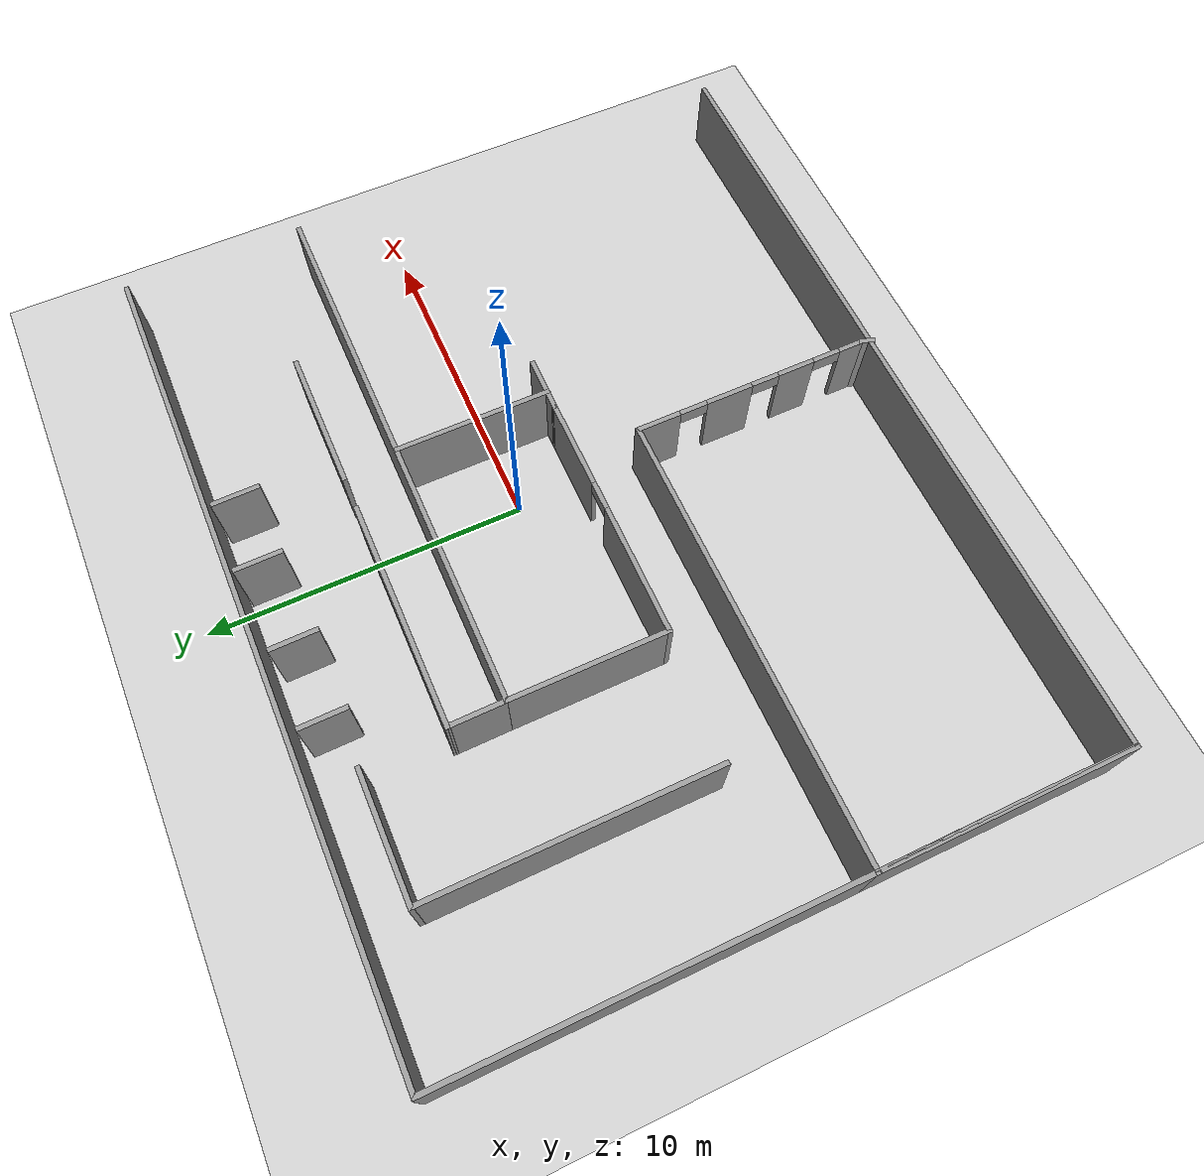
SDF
<sdf version="1.6">
 <world name="default">
  <model name="ground_plane">
   <static>1</static>
   <link name="link">
    <collision name="collision">
     <geometry><plane><normal>0 0 1</normal><size>100 100</size></plane></geometry>
     <surface><friction><ode><mu>100</mu><mu2>50</mu2></ode></friction></surface>
    </collision>
    <visual name="visual">
     <cast_shadows>0</cast_shadows>
     <geometry><plane><normal>0 0 1</normal><size>100 100</size></plane></geometry>
     <material>
      <script><uri>file://media/materials/scripts/gazebo.material</uri><name>Gazebo/Grey</name></script>
     </material>
    </visual>
   </link>
  </model>
  <model name="factory_wall">
   <link name="Wall_13">
    <pose>-0.762375 -0.322535 0 0 -0 3.14159</pose>
    <visual name="Wall_13_Visual_0">
     <pose>-2.55074 0 1.25 0 -0 0</pose>
     <geometry><box><size>2.89852 0.15 2.5</size></box></geometry>
     <material>
      <script><uri>file://media/materials/scripts/gazebo.material</uri><name>Gazebo/Grey</name></script>
      <ambient>1 1 1 1</ambient>
      <shader type="pixel"/>
     </material>
     <meta><layer>0</layer></meta>
    </visual>
    <visual name="Wall_13_Visual_1">
     <pose>1.89926 0 1.25 0 -0 0</pose>
     <geometry><box><size>4.20148 0.15 2.5</size></box></geometry>
     <material>
      <script><uri>file://media/materials/scripts/gazebo.material</uri><name>Gazebo/Grey</name></script>
      <ambient>1 1 1 1</ambient>
      <shader type="pixel"/>
     </material>
     <meta><layer>0</layer></meta>
    </visual>
    <visual name="Wall_13_Visual_2">
     <pose>-0.651482 0 2.25 0 -0 0</pose>
     <geometry><box><size>0.9 0.15 0.5</size></box></geometry>
     <material>
      <script><uri>file://media/materials/scripts/gazebo.material</uri><name>Gazebo/Grey</name></script>
      <ambient>1 1 1 1</ambient>
      <shader type="pixel"/>
     </material>
     <meta><layer>0</layer></meta>
    </visual>
    <collision name="Wall_13_Collision_0">
     <pose>-2.55074 0 1.25 0 -0 0</pose>
     <geometry><box><size>2.89852 0.15 2.5</size></box></geometry>
     <surface>
      <friction>
       <ode><mu>1</mu><mu2>1</mu2><fdir1>0 0 0</fdir1><slip1>0</slip1><slip2>0</slip2></ode>
       <torsional>
        <coefficient>1</coefficient>
        <patch_radius>0</patch_radius>
        <surface_radius>0</surface_radius>
        <use_patch_radius>1</use_patch_radius>
        <ode><slip>0</slip></ode>
       </torsional>
      </friction>
      <bounce><restitution_coefficient>0</restitution_coefficient><threshold>1e+06</threshold></bounce>
      <contact>
       <collide_without_contact>0</collide_without_contact>
       <collide_without_contact_bitmask>1</collide_without_contact_bitmask>
       <collide_bitmask>1</collide_bitmask>
       <ode>
        <soft_cfm>0</soft_cfm>
        <soft_erp>0.2</soft_erp>
        <kp>1e+13</kp>
        <kd>1</kd>
        <max_vel>0.01</max_vel>
        <min_depth>0</min_depth>
       </ode>
       <bullet>
        <split_impulse>1</split_impulse>
        <split_impulse_penetration_threshold>-0.01</split_impulse_penetration_threshold>
        <soft_cfm>0</soft_cfm>
        <soft_erp>0.2</soft_erp>
        <kp>1e+13</kp>
        <kd>1</kd>
       </bullet>
      </contact>
     </surface>
    </collision>
    <collision name="Wall_13_Collision_1">
     <pose>1.89926 0 1.25 0 -0 0</pose>
     <geometry><box><size>4.20148 0.15 2.5</size></box></geometry>
     <surface>
      <friction>
       <ode><mu>1</mu><mu2>1</mu2><fdir1>0 0 0</fdir1><slip1>0</slip1><slip2>0</slip2></ode>
       <torsional>
        <coefficient>1</coefficient>
        <patch_radius>0</patch_radius>
        <surface_radius>0</surface_radius>
        <use_patch_radius>1</use_patch_radius>
        <ode><slip>0</slip></ode>
       </torsional>
      </friction>
      <bounce><restitution_coefficient>0</restitution_coefficient><threshold>1e+06</threshold></bounce>
      <contact>
       <collide_without_contact>0</collide_without_contact>
       <collide_without_contact_bitmask>1</collide_without_contact_bitmask>
       <collide_bitmask>1</collide_bitmask>
       <ode>
        <soft_cfm>0</soft_cfm>
        <soft_erp>0.2</soft_erp>
        <kp>1e+13</kp>
        <kd>1</kd>
        <max_vel>0.01</max_vel>
        <min_depth>0</min_depth>
       </ode>
       <bullet>
        <split_impulse>1</split_impulse>
        <split_impulse_penetration_threshold>-0.01</split_impulse_penetration_threshold>
        <soft_cfm>0</soft_cfm>
        <soft_erp>0.2</soft_erp>
        <kp>1e+13</kp>
        <kd>1</kd>
       </bullet>
      </contact>
     </surface>
    </collision>
    <collision name="Wall_13_Collision_2">
     <pose>-0.651482 0 2.25 0 -0 0</pose>
     <geometry><box><size>0.9 0.15 0.5</size></box></geometry>
     <surface>
      <friction>
       <ode><mu>1</mu><mu2>1</mu2><fdir1>0 0 0</fdir1><slip1>0</slip1><slip2>0</slip2></ode>
       <torsional>
        <coefficient>1</coefficient>
        <patch_radius>0</patch_radius>
        <surface_radius>0</surface_radius>
        <use_patch_radius>1</use_patch_radius>
        <ode><slip>0</slip></ode>
       </torsional>
      </friction>
      <bounce><restitution_coefficient>0</restitution_coefficient><threshold>1e+06</threshold></bounce>
      <contact>
       <collide_without_contact>0</collide_without_contact>
       <collide_without_contact_bitmask>1</collide_without_contact_bitmask>
       <collide_bitmask>1</collide_bitmask>
       <ode>
        <soft_cfm>0</soft_cfm>
        <soft_erp>0.2</soft_erp>
        <kp>1e+13</kp>
        <kd>1</kd>
        <max_vel>0.01</max_vel>
        <min_depth>0</min_depth>
       </ode>
       <bullet>
        <split_impulse>1</split_impulse>
        <split_impulse_penetration_threshold>-0.01</split_impulse_penetration_threshold>
        <soft_cfm>0</soft_cfm>
        <soft_erp>0.2</soft_erp>
        <kp>1e+13</kp>
        <kd>1</kd>
       </bullet>
      </contact>
     </surface>
    </collision>
   </link>
   <link name="Wall_15">
    <pose>-4.68738 2.10247 0 0 -0 1.5708</pose>
    <visual name="Wall_15_Visual">
     <pose>0 0 1.25 0 -0 0</pose>
     <geometry><box><size>5 0.15 2.5</size></box></geometry>
     <material>
      <script><uri>file://media/materials/scripts/gazebo.material</uri><name>Gazebo/Grey</name></script>
      <ambient>1 1 1 1</ambient>
      <shader type="pixel"/>
     </material>
     <meta><layer>0</layer></meta>
    </visual>
    <collision name="Wall_15_Collision">
     <pose>0 0 1.25 0 -0 0</pose>
     <geometry><box><size>5 0.15 2.5</size></box></geometry>
     <surface>
      <friction>
       <ode><mu>1</mu><mu2>1</mu2><fdir1>0 0 0</fdir1><slip1>0</slip1><slip2>0</slip2></ode>
       <torsional>
        <coefficient>1</coefficient>
        <patch_radius>0</patch_radius>
        <surface_radius>0</surface_radius>
        <use_patch_radius>1</use_patch_radius>
        <ode><slip>0</slip></ode>
       </torsional>
      </friction>
      <bounce><restitution_coefficient>0</restitution_coefficient><threshold>1e+06</threshold></bounce>
      <contact>
       <collide_without_contact>0</collide_without_contact>
       <collide_without_contact_bitmask>1</collide_without_contact_bitmask>
       <collide_bitmask>1</collide_bitmask>
       <ode>
        <soft_cfm>0</soft_cfm>
        <soft_erp>0.2</soft_erp>
        <kp>1e+13</kp>
        <kd>1</kd>
        <max_vel>0.01</max_vel>
        <min_depth>0</min_depth>
       </ode>
       <bullet>
        <split_impulse>1</split_impulse>
        <split_impulse_penetration_threshold>-0.01</split_impulse_penetration_threshold>
        <soft_cfm>0</soft_cfm>
        <soft_erp>0.2</soft_erp>
        <kp>1e+13</kp>
        <kd>1</kd>
       </bullet>
      </contact>
     </surface>
    </collision>
   </link>
   <link name="Wall_16">
    <pose>3.98762 4.52747 0 0 -0 0</pose>
    <visual name="Wall_16_Visual">
     <pose>0 0 1.25 0 -0 0</pose>
     <geometry><box><size>17.5 0.15 2.5</size></box></geometry>
     <material>
      <script><uri>file://media/materials/scripts/gazebo.material</uri><name>Gazebo/Grey</name></script>
      <ambient>1 1 1 1</ambient>
      <shader type="pixel"/>
     </material>
     <meta><layer>0</layer></meta>
    </visual>
    <collision name="Wall_16_Collision">
     <pose>0 0 1.25 0 -0 0</pose>
     <geometry><box><size>17.5 0.15 2.5</size></box></geometry>
     <surface>
      <friction>
       <ode><mu>1</mu><mu2>1</mu2><fdir1>0 0 0</fdir1><slip1>0</slip1><slip2>0</slip2></ode>
       <torsional>
        <coefficient>1</coefficient>
        <patch_radius>0</patch_radius>
        <surface_radius>0</surface_radius>
        <use_patch_radius>1</use_patch_radius>
        <ode><slip>0</slip></ode>
       </torsional>
      </friction>
      <bounce><restitution_coefficient>0</restitution_coefficient><threshold>1e+06</threshold></bounce>
      <contact>
       <collide_without_contact>0</collide_without_contact>
       <collide_without_contact_bitmask>1</collide_without_contact_bitmask>
       <collide_bitmask>1</collide_bitmask>
       <ode>
        <soft_cfm>0</soft_cfm>
        <soft_erp>0.2</soft_erp>
        <kp>1e+13</kp>
        <kd>1</kd>
        <max_vel>0.01</max_vel>
        <min_depth>0</min_depth>
       </ode>
       <bullet>
        <split_impulse>1</split_impulse>
        <split_impulse_penetration_threshold>-0.01</split_impulse_penetration_threshold>
        <soft_cfm>0</soft_cfm>
        <soft_erp>0.2</soft_erp>
        <kp>1e+13</kp>
        <kd>1</kd>
       </bullet>
      </contact>
     </surface>
    </collision>
   </link>
   <link name="Wall_26">
    <pose>-0.012375 -10.1225 0 0 -0 3.14159</pose>
    <visual name="Wall_26_Visual">
     <pose>0 0 1.25 0 -0 0</pose>
     <geometry><box><size>25.5 0.15 2.5</size></box></geometry>
     <material>
      <script><uri>file://media/materials/scripts/gazebo.material</uri><name>Gazebo/Grey</name></script>
      <ambient>1 1 1 1</ambient>
      <shader type="pixel"/>
     </material>
     <meta><layer>0</layer></meta>
    </visual>
    <collision name="Wall_26_Collision">
     <pose>0 0 1.25 0 -0 0</pose>
     <geometry><box><size>25.5 0.15 2.5</size></box></geometry>
     <surface>
      <friction>
       <ode><mu>1</mu><mu2>1</mu2><fdir1>0 0 0</fdir1><slip1>0</slip1><slip2>0</slip2></ode>
       <torsional>
        <coefficient>1</coefficient>
        <patch_radius>0</patch_radius>
        <surface_radius>0</surface_radius>
        <use_patch_radius>1</use_patch_radius>
        <ode><slip>0</slip></ode>
       </torsional>
      </friction>
      <bounce><restitution_coefficient>0</restitution_coefficient><threshold>1e+06</threshold></bounce>
      <contact>
       <collide_without_contact>0</collide_without_contact>
       <collide_without_contact_bitmask>1</collide_without_contact_bitmask>
       <collide_bitmask>1</collide_bitmask>
       <ode>
        <soft_cfm>0</soft_cfm>
        <soft_erp>0.2</soft_erp>
        <kp>1e+13</kp>
        <kd>1</kd>
        <max_vel>0.01</max_vel>
        <min_depth>0</min_depth>
       </ode>
       <bullet>
        <split_impulse>1</split_impulse>
        <split_impulse_penetration_threshold>-0.01</split_impulse_penetration_threshold>
        <soft_cfm>0</soft_cfm>
        <soft_erp>0.2</soft_erp>
        <kp>1e+13</kp>
        <kd>1</kd>
       </bullet>
      </contact>
     </surface>
    </collision>
   </link>
   <link name="Wall_27">
    <pose>-12.6874 0.052465 0 0 -0 1.5708</pose>
    <visual name="Wall_27_Visual">
     <pose>0 0 1.25 0 -0 0</pose>
     <geometry><box><size>20.5 0.15 2.5</size></box></geometry>
     <material>
      <script><uri>file://media/materials/scripts/gazebo.material</uri><name>Gazebo/Grey</name></script>
      <ambient>1 1 1 1</ambient>
      <shader type="pixel"/>
     </material>
     <meta><layer>0</layer></meta>
    </visual>
    <collision name="Wall_27_Collision">
     <pose>0 0 1.25 0 -0 0</pose>
     <geometry><box><size>20.5 0.15 2.5</size></box></geometry>
     <surface>
      <friction>
       <ode><mu>1</mu><mu2>1</mu2><fdir1>0 0 0</fdir1><slip1>0</slip1><slip2>0</slip2></ode>
       <torsional>
        <coefficient>1</coefficient>
        <patch_radius>0</patch_radius>
        <surface_radius>0</surface_radius>
        <use_patch_radius>1</use_patch_radius>
        <ode><slip>0</slip></ode>
       </torsional>
      </friction>
      <bounce><restitution_coefficient>0</restitution_coefficient><threshold>1e+06</threshold></bounce>
      <contact>
       <collide_without_contact>0</collide_without_contact>
       <collide_without_contact_bitmask>1</collide_without_contact_bitmask>
       <collide_bitmask>1</collide_bitmask>
       <ode>
        <soft_cfm>0</soft_cfm>
        <soft_erp>0.2</soft_erp>
        <kp>1e+13</kp>
        <kd>1</kd>
        <max_vel>0.01</max_vel>
        <min_depth>0</min_depth>
       </ode>
       <bullet>
        <split_impulse>1</split_impulse>
        <split_impulse_penetration_threshold>-0.01</split_impulse_penetration_threshold>
        <soft_cfm>0</soft_cfm>
        <soft_erp>0.2</soft_erp>
        <kp>1e+13</kp>
        <kd>1</kd>
       </bullet>
      </contact>
     </surface>
    </collision>
   </link>
   <link name="Wall_29">
    <pose>-0.012375 10.2275 0 0 -0 0</pose>
    <visual name="Wall_29_Visual">
     <pose>0 0 1.25 0 -0 0</pose>
     <geometry><box><size>25.5 0.15 2.5</size></box></geometry>
     <material>
      <script><uri>file://media/materials/scripts/gazebo.material</uri><name>Gazebo/Grey</name></script>
      <ambient>1 1 1 1</ambient>
      <shader type="pixel"/>
     </material>
     <meta><layer>0</layer></meta>
    </visual>
    <collision name="Wall_29_Collision">
     <pose>0 0 1.25 0 -0 0</pose>
     <geometry><box><size>25.5 0.15 2.5</size></box></geometry>
     <surface>
      <friction>
       <ode><mu>1</mu><mu2>1</mu2><fdir1>0 0 0</fdir1><slip1>0</slip1><slip2>0</slip2></ode>
       <torsional>
        <coefficient>1</coefficient>
        <patch_radius>0</patch_radius>
        <surface_radius>0</surface_radius>
        <use_patch_radius>1</use_patch_radius>
        <ode><slip>0</slip></ode>
       </torsional>
      </friction>
      <bounce><restitution_coefficient>0</restitution_coefficient><threshold>1e+06</threshold></bounce>
      <contact>
       <collide_without_contact>0</collide_without_contact>
       <collide_without_contact_bitmask>1</collide_without_contact_bitmask>
       <collide_bitmask>1</collide_bitmask>
       <ode>
        <soft_cfm>0</soft_cfm>
        <soft_erp>0.2</soft_erp>
        <kp>1e+13</kp>
        <kd>1</kd>
        <max_vel>0.01</max_vel>
        <min_depth>0</min_depth>
       </ode>
       <bullet>
        <split_impulse>1</split_impulse>
        <split_impulse_penetration_threshold>-0.01</split_impulse_penetration_threshold>
        <soft_cfm>0</soft_cfm>
        <soft_erp>0.2</soft_erp>
        <kp>1e+13</kp>
        <kd>1</kd>
       </bullet>
      </contact>
     </surface>
    </collision>
   </link>
   <link name="Wall_35">
    <pose>4 -0.327463 0 0 -0 3.13571</pose>
    <visual name="Wall_35_Visual">
     <pose>0 0 1.25 0 -0 0</pose>
     <geometry><box><size>1.82478 0.15 2.5</size></box></geometry>
     <material>
      <script><uri>file://media/materials/scripts/gazebo.material</uri><name>Gazebo/Grey</name></script>
      <ambient>1 1 1 1</ambient>
      <shader type="pixel"/>
     </material>
     <meta><layer>0</layer></meta>
    </visual>
    <collision name="Wall_35_Collision">
     <pose>0 0 1.25 0 -0 0</pose>
     <geometry><box><size>1.82478 0.15 2.5</size></box></geometry>
     <surface>
      <friction>
       <ode><mu>1</mu><mu2>1</mu2><fdir1>0 0 0</fdir1><slip1>0</slip1><slip2>0</slip2></ode>
       <torsional>
        <coefficient>1</coefficient>
        <patch_radius>0</patch_radius>
        <surface_radius>0</surface_radius>
        <use_patch_radius>1</use_patch_radius>
        <ode><slip>0</slip></ode>
       </torsional>
      </friction>
      <bounce><restitution_coefficient>0</restitution_coefficient><threshold>1e+06</threshold></bounce>
      <contact>
       <collide_without_contact>0</collide_without_contact>
       <collide_without_contact_bitmask>1</collide_without_contact_bitmask>
       <collide_bitmask>1</collide_bitmask>
       <ode>
        <soft_cfm>0</soft_cfm>
        <soft_erp>0.2</soft_erp>
        <kp>1e+13</kp>
        <kd>1</kd>
        <max_vel>0.01</max_vel>
        <min_depth>0</min_depth>
       </ode>
       <bullet>
        <split_impulse>1</split_impulse>
        <split_impulse_penetration_threshold>-0.01</split_impulse_penetration_threshold>
        <soft_cfm>0</soft_cfm>
        <soft_erp>0.2</soft_erp>
        <kp>1e+13</kp>
        <kd>1</kd>
       </bullet>
      </contact>
     </surface>
    </collision>
   </link>
   <link name="Wall_39">
    <pose>3.7367 2.09148 0 0 0 -1.5708</pose>
    <visual name="Wall_39_Visual">
     <pose>0 0 1.25 0 -0 0</pose>
     <geometry><box><size>5 0.15 2.5</size></box></geometry>
     <material>
      <script><uri>file://media/materials/scripts/gazebo.material</uri><name>Gazebo/Grey</name></script>
      <ambient>1 1 1 1</ambient>
      <shader type="pixel"/>
     </material>
     <meta><layer>0</layer></meta>
    </visual>
    <collision name="Wall_39_Collision">
     <pose>0 0 1.25 0 -0 0</pose>
     <geometry><box><size>5 0.15 2.5</size></box></geometry>
     <surface>
      <friction>
       <ode><mu>1</mu><mu2>1</mu2><fdir1>0 0 0</fdir1><slip1>0</slip1><slip2>0</slip2></ode>
       <torsional>
        <coefficient>1</coefficient>
        <patch_radius>0</patch_radius>
        <surface_radius>0</surface_radius>
        <use_patch_radius>1</use_patch_radius>
        <ode><slip>0</slip></ode>
       </torsional>
      </friction>
      <bounce><restitution_coefficient>0</restitution_coefficient><threshold>1e+06</threshold></bounce>
      <contact>
       <collide_without_contact>0</collide_without_contact>
       <collide_without_contact_bitmask>1</collide_without_contact_bitmask>
       <collide_bitmask>1</collide_bitmask>
       <ode>
        <soft_cfm>0</soft_cfm>
        <soft_erp>0.2</soft_erp>
        <kp>1e+13</kp>
        <kd>1</kd>
        <max_vel>0.01</max_vel>
        <min_depth>0</min_depth>
       </ode>
       <bullet>
        <split_impulse>1</split_impulse>
        <split_impulse_penetration_threshold>-0.01</split_impulse_penetration_threshold>
        <soft_cfm>0</soft_cfm>
        <soft_erp>0.2</soft_erp>
        <kp>1e+13</kp>
        <kd>1</kd>
       </bullet>
      </contact>
     </surface>
    </collision>
   </link>
   <link name="Wall_60">
    <pose>5.65289 6.2452 0 0 -0 3.14159</pose>
    <visual name="Wall_60_Visual">
     <pose>0 0 1.25 0 -0 0</pose>
     <geometry><box><size>4.5 0.15 2.5</size></box></geometry>
     <material>
      <script><uri>file://media/materials/scripts/gazebo.material</uri><name>Gazebo/Grey</name></script>
      <ambient>1 1 1 1</ambient>
      <shader type="pixel"/>
     </material>
     <meta><layer>0</layer></meta>
    </visual>
    <collision name="Wall_60_Collision">
     <pose>0 0 1.25 0 -0 0</pose>
     <geometry><box><size>4.5 0.15 2.5</size></box></geometry>
     <surface>
      <friction>
       <ode><mu>1</mu><mu2>1</mu2><fdir1>0 0 0</fdir1><slip1>0</slip1><slip2>0</slip2></ode>
       <torsional>
        <coefficient>1</coefficient>
        <patch_radius>0</patch_radius>
        <surface_radius>0</surface_radius>
        <use_patch_radius>1</use_patch_radius>
        <ode><slip>0</slip></ode>
       </torsional>
      </friction>
      <bounce><restitution_coefficient>0</restitution_coefficient><threshold>1e+06</threshold></bounce>
      <contact>
       <collide_without_contact>0</collide_without_contact>
       <collide_without_contact_bitmask>1</collide_without_contact_bitmask>
       <collide_bitmask>1</collide_bitmask>
       <ode>
        <soft_cfm>0</soft_cfm>
        <soft_erp>0.2</soft_erp>
        <kp>1e+13</kp>
        <kd>1</kd>
        <max_vel>0.01</max_vel>
        <min_depth>0</min_depth>
       </ode>
       <bullet>
        <split_impulse>1</split_impulse>
        <split_impulse_penetration_threshold>-0.01</split_impulse_penetration_threshold>
        <soft_cfm>0</soft_cfm>
        <soft_erp>0.2</soft_erp>
        <kp>1e+13</kp>
        <kd>1</kd>
       </bullet>
      </contact>
     </surface>
    </collision>
   </link>
   <link name="Wall_63">
    <pose>-1.1525 6.24832 0 0 -0 3.14159</pose>
    <visual name="Wall_63_Visual">
     <pose>0 0 1.25 0 -0 0</pose>
     <geometry><box><size>7.25 0.15 2.5</size></box></geometry>
     <material>
      <script><uri>file://media/materials/scripts/gazebo.material</uri><name>Gazebo/Grey</name></script>
      <ambient>1 1 1 1</ambient>
      <shader type="pixel"/>
     </material>
     <meta><layer>0</layer></meta>
    </visual>
    <collision name="Wall_63_Collision">
     <pose>0 0 1.25 0 -0 0</pose>
     <geometry><box><size>7.25 0.15 2.5</size></box></geometry>
     <surface>
      <friction>
       <ode><mu>1</mu><mu2>1</mu2><fdir1>0 0 0</fdir1><slip1>0</slip1><slip2>0</slip2></ode>
       <torsional>
        <coefficient>1</coefficient>
        <patch_radius>0</patch_radius>
        <surface_radius>0</surface_radius>
        <use_patch_radius>1</use_patch_radius>
        <ode><slip>0</slip></ode>
       </torsional>
      </friction>
      <bounce><restitution_coefficient>0</restitution_coefficient><threshold>1e+06</threshold></bounce>
      <contact>
       <collide_without_contact>0</collide_without_contact>
       <collide_without_contact_bitmask>1</collide_without_contact_bitmask>
       <collide_bitmask>1</collide_bitmask>
       <ode>
        <soft_cfm>0</soft_cfm>
        <soft_erp>0.2</soft_erp>
        <kp>1e+13</kp>
        <kd>1</kd>
        <max_vel>0.01</max_vel>
        <min_depth>0</min_depth>
       </ode>
       <bullet>
        <split_impulse>1</split_impulse>
        <split_impulse_penetration_threshold>-0.01</split_impulse_penetration_threshold>
        <soft_cfm>0</soft_cfm>
        <soft_erp>0.2</soft_erp>
        <kp>1e+13</kp>
        <kd>1</kd>
       </bullet>
      </contact>
     </surface>
    </collision>
   </link>
   <link name="Wall_64">
    <pose>-4.69494 5.38789 0 0 0 -1.56201</pose>
    <visual name="Wall_64_Visual">
     <pose>0 0 1.25 0 -0 0</pose>
     <geometry><box><size>1.87093 0.15 2.5</size></box></geometry>
     <material>
      <script><uri>file://media/materials/scripts/gazebo.material</uri><name>Gazebo/Grey</name></script>
      <ambient>1 1 1 1</ambient>
      <shader type="pixel"/>
     </material>
     <meta><layer>0</layer></meta>
    </visual>
    <collision name="Wall_64_Collision">
     <pose>0 0 1.25 0 -0 0</pose>
     <geometry><box><size>1.87093 0.15 2.5</size></box></geometry>
     <surface>
      <friction>
       <ode><mu>1</mu><mu2>1</mu2><fdir1>0 0 0</fdir1><slip1>0</slip1><slip2>0</slip2></ode>
       <torsional>
        <coefficient>1</coefficient>
        <patch_radius>0</patch_radius>
        <surface_radius>0</surface_radius>
        <use_patch_radius>1</use_patch_radius>
        <ode><slip>0</slip></ode>
       </torsional>
      </friction>
      <bounce><restitution_coefficient>0</restitution_coefficient><threshold>1e+06</threshold></bounce>
      <contact>
       <collide_without_contact>0</collide_without_contact>
       <collide_without_contact_bitmask>1</collide_without_contact_bitmask>
       <collide_bitmask>1</collide_bitmask>
       <ode>
        <soft_cfm>0</soft_cfm>
        <soft_erp>0.2</soft_erp>
        <kp>1e+13</kp>
        <kd>1</kd>
        <max_vel>0.01</max_vel>
        <min_depth>0</min_depth>
       </ode>
       <bullet>
        <split_impulse>1</split_impulse>
        <split_impulse_penetration_threshold>-0.01</split_impulse_penetration_threshold>
        <soft_cfm>0</soft_cfm>
        <soft_erp>0.2</soft_erp>
        <kp>1e+13</kp>
        <kd>1</kd>
       </bullet>
      </contact>
     </surface>
    </collision>
   </link>
   <link name="Wall_66">
    <pose>-6.71237 8.77746 0 0 -0 3.14159</pose>
    <visual name="Wall_66_Visual">
     <pose>0 0 1.25 0 -0 0</pose>
     <geometry><box><size>4 0.15 2.5</size></box></geometry>
     <material>
      <script><uri>file://media/materials/scripts/gazebo.material</uri><name>Gazebo/Grey</name></script>
      <ambient>1 1 1 1</ambient>
      <shader type="pixel"/>
     </material>
     <meta><layer>0</layer></meta>
    </visual>
    <collision name="Wall_66_Collision">
     <pose>0 0 1.25 0 -0 0</pose>
     <geometry><box><size>4 0.15 2.5</size></box></geometry>
     <surface>
      <friction>
       <ode><mu>1</mu><mu2>1</mu2><fdir1>0 0 0</fdir1><slip1>0</slip1><slip2>0</slip2></ode>
       <torsional>
        <coefficient>1</coefficient>
        <patch_radius>0</patch_radius>
        <surface_radius>0</surface_radius>
        <use_patch_radius>1</use_patch_radius>
        <ode><slip>0</slip></ode>
       </torsional>
      </friction>
      <bounce><restitution_coefficient>0</restitution_coefficient><threshold>1e+06</threshold></bounce>
      <contact>
       <collide_without_contact>0</collide_without_contact>
       <collide_without_contact_bitmask>1</collide_without_contact_bitmask>
       <collide_bitmask>1</collide_bitmask>
       <ode>
        <soft_cfm>0</soft_cfm>
        <soft_erp>0.2</soft_erp>
        <kp>1e+13</kp>
        <kd>1</kd>
        <max_vel>0.01</max_vel>
        <min_depth>0</min_depth>
       </ode>
       <bullet>
        <split_impulse>1</split_impulse>
        <split_impulse_penetration_threshold>-0.01</split_impulse_penetration_threshold>
        <soft_cfm>0</soft_cfm>
        <soft_erp>0.2</soft_erp>
        <kp>1e+13</kp>
        <kd>1</kd>
       </bullet>
      </contact>
     </surface>
    </collision>
   </link>
   <link name="Wall_67">
    <pose>-8.63738 4.35246 0 0 0 -1.5708</pose>
    <visual name="Wall_67_Visual">
     <pose>0 0 1.25 0 -0 0</pose>
     <geometry><box><size>9 0.15 2.5</size></box></geometry>
     <material>
      <script><uri>file://media/materials/scripts/gazebo.material</uri><name>Gazebo/Grey</name></script>
      <ambient>1 1 1 1</ambient>
      <shader type="pixel"/>
     </material>
     <meta><layer>0</layer></meta>
    </visual>
    <collision name="Wall_67_Collision">
     <pose>0 0 1.25 0 -0 0</pose>
     <geometry><box><size>9 0.15 2.5</size></box></geometry>
     <surface>
      <friction>
       <ode><mu>1</mu><mu2>1</mu2><fdir1>0 0 0</fdir1><slip1>0</slip1><slip2>0</slip2></ode>
       <torsional>
        <coefficient>1</coefficient>
        <patch_radius>0</patch_radius>
        <surface_radius>0</surface_radius>
        <use_patch_radius>1</use_patch_radius>
        <ode><slip>0</slip></ode>
       </torsional>
      </friction>
      <bounce><restitution_coefficient>0</restitution_coefficient><threshold>1e+06</threshold></bounce>
      <contact>
       <collide_without_contact>0</collide_without_contact>
       <collide_without_contact_bitmask>1</collide_without_contact_bitmask>
       <collide_bitmask>1</collide_bitmask>
       <ode>
        <soft_cfm>0</soft_cfm>
        <soft_erp>0.2</soft_erp>
        <kp>1e+13</kp>
        <kd>1</kd>
        <max_vel>0.01</max_vel>
        <min_depth>0</min_depth>
       </ode>
       <bullet>
        <split_impulse>1</split_impulse>
        <split_impulse_penetration_threshold>-0.01</split_impulse_penetration_threshold>
        <soft_cfm>0</soft_cfm>
        <soft_erp>0.2</soft_erp>
        <kp>1e+13</kp>
        <kd>1</kd>
       </bullet>
      </contact>
     </surface>
    </collision>
   </link>
   <link name="Wall_69">
    <pose>-12.6874 -6.19754 0 0 -0 1.5708</pose>
    <visual name="Wall_69_Visual">
     <pose>0 0 1.25 0 -0 0</pose>
     <geometry><box><size>8 0.15 2.5</size></box></geometry>
     <material>
      <script><uri>file://media/materials/scripts/gazebo.material</uri><name>Gazebo/Grey</name></script>
      <ambient>1 1 1 1</ambient>
      <shader type="pixel"/>
     </material>
     <meta><layer>0</layer></meta>
    </visual>
    <collision name="Wall_69_Collision">
     <pose>0 0 1.25 0 -0 0</pose>
     <geometry><box><size>8 0.15 2.5</size></box></geometry>
     <surface>
      <friction>
       <ode><mu>1</mu><mu2>1</mu2><fdir1>0 0 0</fdir1><slip1>0</slip1><slip2>0</slip2></ode>
       <torsional>
        <coefficient>1</coefficient>
        <patch_radius>0</patch_radius>
        <surface_radius>0</surface_radius>
        <use_patch_radius>1</use_patch_radius>
        <ode><slip>0</slip></ode>
       </torsional>
      </friction>
      <bounce><restitution_coefficient>0</restitution_coefficient><threshold>1e+06</threshold></bounce>
      <contact>
       <collide_without_contact>0</collide_without_contact>
       <collide_without_contact_bitmask>1</collide_without_contact_bitmask>
       <collide_bitmask>1</collide_bitmask>
       <ode>
        <soft_cfm>0</soft_cfm>
        <soft_erp>0.2</soft_erp>
        <kp>1e+13</kp>
        <kd>1</kd>
        <max_vel>0.01</max_vel>
        <min_depth>0</min_depth>
       </ode>
       <bullet>
        <split_impulse>1</split_impulse>
        <split_impulse_penetration_threshold>-0.01</split_impulse_penetration_threshold>
        <soft_cfm>0</soft_cfm>
        <soft_erp>0.2</soft_erp>
        <kp>1e+13</kp>
        <kd>1</kd>
       </bullet>
      </contact>
     </surface>
    </collision>
   </link>
   <link name="Wall_70">
    <pose>-5.63737 -2.27253 0 0 -0 0</pose>
    <visual name="Wall_70_Visual">
     <pose>0 0 1.25 0 -0 0</pose>
     <geometry><box><size>14.25 0.15 2.5</size></box></geometry>
     <material>
      <script><uri>file://media/materials/scripts/gazebo.material</uri><name>Gazebo/Grey</name></script>
      <ambient>1 1 1 1</ambient>
      <shader type="pixel"/>
     </material>
     <meta><layer>0</layer></meta>
    </visual>
    <collision name="Wall_70_Collision">
     <pose>0 0 1.25 0 -0 0</pose>
     <geometry><box><size>14.25 0.15 2.5</size></box></geometry>
     <surface>
      <friction>
       <ode><mu>1</mu><mu2>1</mu2><fdir1>0 0 0</fdir1><slip1>0</slip1><slip2>0</slip2></ode>
       <torsional>
        <coefficient>1</coefficient>
        <patch_radius>0</patch_radius>
        <surface_radius>0</surface_radius>
        <use_patch_radius>1</use_patch_radius>
        <ode><slip>0</slip></ode>
       </torsional>
      </friction>
      <bounce><restitution_coefficient>0</restitution_coefficient><threshold>1e+06</threshold></bounce>
      <contact>
       <collide_without_contact>0</collide_without_contact>
       <collide_without_contact_bitmask>1</collide_without_contact_bitmask>
       <collide_bitmask>1</collide_bitmask>
       <ode>
        <soft_cfm>0</soft_cfm>
        <soft_erp>0.2</soft_erp>
        <kp>1e+13</kp>
        <kd>1</kd>
        <max_vel>0.01</max_vel>
        <min_depth>0</min_depth>
       </ode>
       <bullet>
        <split_impulse>1</split_impulse>
        <split_impulse_penetration_threshold>-0.01</split_impulse_penetration_threshold>
        <soft_cfm>0</soft_cfm>
        <soft_erp>0.2</soft_erp>
        <kp>1e+13</kp>
        <kd>1</kd>
       </bullet>
      </contact>
     </surface>
    </collision>
   </link>
   <link name="Wall_71">
    <pose>1.41263 -6.07254 0 0 0 -1.5708</pose>
    <visual name="Wall_71_Visual_0">
     <pose>-3.15123 0 1.25 0 -0 0</pose>
     <geometry><box><size>1.44753 0.15 2.5</size></box></geometry>
     <material>
      <script><uri>file://media/materials/scripts/gazebo.material</uri><name>Gazebo/Grey</name></script>
      <ambient>1 1 1 1</ambient>
      <shader type="pixel"/>
     </material>
     <meta><layer>0</layer></meta>
    </visual>
    <visual name="Wall_71_Visual_1">
     <pose>-0.765536 0 1.25 0 -0 0</pose>
     <geometry><box><size>1.52386 0.15 2.5</size></box></geometry>
     <material>
      <script><uri>file://media/materials/scripts/gazebo.material</uri><name>Gazebo/Grey</name></script>
      <ambient>1 1 1 1</ambient>
      <shader type="pixel"/>
     </material>
     <meta><layer>0</layer></meta>
    </visual>
    <visual name="Wall_71_Visual_2">
     <pose>1.50126 0 1.25 0 -0 0</pose>
     <geometry><box><size>1.20974 0.15 2.5</size></box></geometry>
     <material>
      <script><uri>file://media/materials/scripts/gazebo.material</uri><name>Gazebo/Grey</name></script>
      <ambient>1 1 1 1</ambient>
      <shader type="pixel"/>
     </material>
     <meta><layer>0</layer></meta>
    </visual>
    <visual name="Wall_71_Visual_3">
     <pose>3.44057 0 1.25 0 -0 0</pose>
     <geometry><box><size>0.868867 0.15 2.5</size></box></geometry>
     <material>
      <script><uri>file://media/materials/scripts/gazebo.material</uri><name>Gazebo/Grey</name></script>
      <ambient>1 1 1 1</ambient>
      <shader type="pixel"/>
     </material>
     <meta><layer>0</layer></meta>
    </visual>
    <visual name="Wall_71_Visual_4">
     <pose>-1.97747 0 2.25 0 -0 0</pose>
     <geometry><box><size>0.9 0.15 0.5</size></box></geometry>
     <material>
      <script><uri>file://media/materials/scripts/gazebo.material</uri><name>Gazebo/Grey</name></script>
      <ambient>1 1 1 1</ambient>
      <shader type="pixel"/>
     </material>
     <meta><layer>0</layer></meta>
    </visual>
    <visual name="Wall_71_Visual_5">
     <pose>0.446394 0 2.25 0 -0 0</pose>
     <geometry><box><size>0.9 0.15 0.5</size></box></geometry>
     <material>
      <script><uri>file://media/materials/scripts/gazebo.material</uri><name>Gazebo/Grey</name></script>
      <ambient>1 1 1 1</ambient>
      <shader type="pixel"/>
     </material>
     <meta><layer>0</layer></meta>
    </visual>
    <visual name="Wall_71_Visual_6">
     <pose>2.55613 0 2.25 0 -0 0</pose>
     <geometry><box><size>0.9 0.15 0.5</size></box></geometry>
     <material>
      <script><uri>file://media/materials/scripts/gazebo.material</uri><name>Gazebo/Grey</name></script>
      <ambient>1 1 1 1</ambient>
      <shader type="pixel"/>
     </material>
     <meta><layer>0</layer></meta>
    </visual>
    <collision name="Wall_71_Collision_0">
     <pose>-3.15123 0 1.25 0 -0 0</pose>
     <geometry><box><size>1.44753 0.15 2.5</size></box></geometry>
     <surface>
      <friction>
       <ode><mu>1</mu><mu2>1</mu2><fdir1>0 0 0</fdir1><slip1>0</slip1><slip2>0</slip2></ode>
       <torsional>
        <coefficient>1</coefficient>
        <patch_radius>0</patch_radius>
        <surface_radius>0</surface_radius>
        <use_patch_radius>1</use_patch_radius>
        <ode><slip>0</slip></ode>
       </torsional>
      </friction>
      <bounce><restitution_coefficient>0</restitution_coefficient><threshold>1e+06</threshold></bounce>
      <contact>
       <collide_without_contact>0</collide_without_contact>
       <collide_without_contact_bitmask>1</collide_without_contact_bitmask>
       <collide_bitmask>1</collide_bitmask>
       <ode>
        <soft_cfm>0</soft_cfm>
        <soft_erp>0.2</soft_erp>
        <kp>1e+13</kp>
        <kd>1</kd>
        <max_vel>0.01</max_vel>
        <min_depth>0</min_depth>
       </ode>
       <bullet>
        <split_impulse>1</split_impulse>
        <split_impulse_penetration_threshold>-0.01</split_impulse_penetration_threshold>
        <soft_cfm>0</soft_cfm>
        <soft_erp>0.2</soft_erp>
        <kp>1e+13</kp>
        <kd>1</kd>
       </bullet>
      </contact>
     </surface>
    </collision>
    <collision name="Wall_71_Collision_1">
     <pose>-0.765536 0 1.25 0 -0 0</pose>
     <geometry><box><size>1.52386 0.15 2.5</size></box></geometry>
     <surface>
      <friction>
       <ode><mu>1</mu><mu2>1</mu2><fdir1>0 0 0</fdir1><slip1>0</slip1><slip2>0</slip2></ode>
       <torsional>
        <coefficient>1</coefficient>
        <patch_radius>0</patch_radius>
        <surface_radius>0</surface_radius>
        <use_patch_radius>1</use_patch_radius>
        <ode><slip>0</slip></ode>
       </torsional>
      </friction>
      <bounce><restitution_coefficient>0</restitution_coefficient><threshold>1e+06</threshold></bounce>
      <contact>
       <collide_without_contact>0</collide_without_contact>
       <collide_without_contact_bitmask>1</collide_without_contact_bitmask>
       <collide_bitmask>1</collide_bitmask>
       <ode>
        <soft_cfm>0</soft_cfm>
        <soft_erp>0.2</soft_erp>
        <kp>1e+13</kp>
        <kd>1</kd>
        <max_vel>0.01</max_vel>
        <min_depth>0</min_depth>
       </ode>
       <bullet>
        <split_impulse>1</split_impulse>
        <split_impulse_penetration_threshold>-0.01</split_impulse_penetration_threshold>
        <soft_cfm>0</soft_cfm>
        <soft_erp>0.2</soft_erp>
        <kp>1e+13</kp>
        <kd>1</kd>
       </bullet>
      </contact>
     </surface>
    </collision>
    <collision name="Wall_71_Collision_2">
     <pose>1.50126 0 1.25 0 -0 0</pose>
     <geometry><box><size>1.20974 0.15 2.5</size></box></geometry>
     <surface>
      <friction>
       <ode><mu>1</mu><mu2>1</mu2><fdir1>0 0 0</fdir1><slip1>0</slip1><slip2>0</slip2></ode>
       <torsional>
        <coefficient>1</coefficient>
        <patch_radius>0</patch_radius>
        <surface_radius>0</surface_radius>
        <use_patch_radius>1</use_patch_radius>
        <ode><slip>0</slip></ode>
       </torsional>
      </friction>
      <bounce><restitution_coefficient>0</restitution_coefficient><threshold>1e+06</threshold></bounce>
      <contact>
       <collide_without_contact>0</collide_without_contact>
       <collide_without_contact_bitmask>1</collide_without_contact_bitmask>
       <collide_bitmask>1</collide_bitmask>
       <ode>
        <soft_cfm>0</soft_cfm>
        <soft_erp>0.2</soft_erp>
        <kp>1e+13</kp>
        <kd>1</kd>
        <max_vel>0.01</max_vel>
        <min_depth>0</min_depth>
       </ode>
       <bullet>
        <split_impulse>1</split_impulse>
        <split_impulse_penetration_threshold>-0.01</split_impulse_penetration_threshold>
        <soft_cfm>0</soft_cfm>
        <soft_erp>0.2</soft_erp>
        <kp>1e+13</kp>
        <kd>1</kd>
       </bullet>
      </contact>
     </surface>
    </collision>
    <collision name="Wall_71_Collision_3">
     <pose>3.44057 0 1.25 0 -0 0</pose>
     <geometry><box><size>0.868867 0.15 2.5</size></box></geometry>
     <surface>
      <friction>
       <ode><mu>1</mu><mu2>1</mu2><fdir1>0 0 0</fdir1><slip1>0</slip1><slip2>0</slip2></ode>
       <torsional>
        <coefficient>1</coefficient>
        <patch_radius>0</patch_radius>
        <surface_radius>0</surface_radius>
        <use_patch_radius>1</use_patch_radius>
        <ode><slip>0</slip></ode>
       </torsional>
      </friction>
      <bounce><restitution_coefficient>0</restitution_coefficient><threshold>1e+06</threshold></bounce>
      <contact>
       <collide_without_contact>0</collide_without_contact>
       <collide_without_contact_bitmask>1</collide_without_contact_bitmask>
       <collide_bitmask>1</collide_bitmask>
       <ode>
        <soft_cfm>0</soft_cfm>
        <soft_erp>0.2</soft_erp>
        <kp>1e+13</kp>
        <kd>1</kd>
        <max_vel>0.01</max_vel>
        <min_depth>0</min_depth>
       </ode>
       <bullet>
        <split_impulse>1</split_impulse>
        <split_impulse_penetration_threshold>-0.01</split_impulse_penetration_threshold>
        <soft_cfm>0</soft_cfm>
        <soft_erp>0.2</soft_erp>
        <kp>1e+13</kp>
        <kd>1</kd>
       </bullet>
      </contact>
     </surface>
    </collision>
    <collision name="Wall_71_Collision_4">
     <pose>-1.97747 0 2.25 0 -0 0</pose>
     <geometry><box><size>0.9 0.15 0.5</size></box></geometry>
     <surface>
      <friction>
       <ode><mu>1</mu><mu2>1</mu2><fdir1>0 0 0</fdir1><slip1>0</slip1><slip2>0</slip2></ode>
       <torsional>
        <coefficient>1</coefficient>
        <patch_radius>0</patch_radius>
        <surface_radius>0</surface_radius>
        <use_patch_radius>1</use_patch_radius>
        <ode><slip>0</slip></ode>
       </torsional>
      </friction>
      <bounce><restitution_coefficient>0</restitution_coefficient><threshold>1e+06</threshold></bounce>
      <contact>
       <collide_without_contact>0</collide_without_contact>
       <collide_without_contact_bitmask>1</collide_without_contact_bitmask>
       <collide_bitmask>1</collide_bitmask>
       <ode>
        <soft_cfm>0</soft_cfm>
        <soft_erp>0.2</soft_erp>
        <kp>1e+13</kp>
        <kd>1</kd>
        <max_vel>0.01</max_vel>
        <min_depth>0</min_depth>
       </ode>
       <bullet>
        <split_impulse>1</split_impulse>
        <split_impulse_penetration_threshold>-0.01</split_impulse_penetration_threshold>
        <soft_cfm>0</soft_cfm>
        <soft_erp>0.2</soft_erp>
        <kp>1e+13</kp>
        <kd>1</kd>
       </bullet>
      </contact>
     </surface>
    </collision>
    <collision name="Wall_71_Collision_5">
     <pose>0.446394 0 2.25 0 -0 0</pose>
     <geometry><box><size>0.9 0.15 0.5</size></box></geometry>
     <surface>
      <friction>
       <ode><mu>1</mu><mu2>1</mu2><fdir1>0 0 0</fdir1><slip1>0</slip1><slip2>0</slip2></ode>
       <torsional>
        <coefficient>1</coefficient>
        <patch_radius>0</patch_radius>
        <surface_radius>0</surface_radius>
        <use_patch_radius>1</use_patch_radius>
        <ode><slip>0</slip></ode>
       </torsional>
      </friction>
      <bounce><restitution_coefficient>0</restitution_coefficient><threshold>1e+06</threshold></bounce>
      <contact>
       <collide_without_contact>0</collide_without_contact>
       <collide_without_contact_bitmask>1</collide_without_contact_bitmask>
       <collide_bitmask>1</collide_bitmask>
       <ode>
        <soft_cfm>0</soft_cfm>
        <soft_erp>0.2</soft_erp>
        <kp>1e+13</kp>
        <kd>1</kd>
        <max_vel>0.01</max_vel>
        <min_depth>0</min_depth>
       </ode>
       <bullet>
        <split_impulse>1</split_impulse>
        <split_impulse_penetration_threshold>-0.01</split_impulse_penetration_threshold>
        <soft_cfm>0</soft_cfm>
        <soft_erp>0.2</soft_erp>
        <kp>1e+13</kp>
        <kd>1</kd>
       </bullet>
      </contact>
     </surface>
    </collision>
    <collision name="Wall_71_Collision_6">
     <pose>2.55613 0 2.25 0 -0 0</pose>
     <geometry><box><size>0.9 0.15 0.5</size></box></geometry>
     <surface>
      <friction>
       <ode><mu>1</mu><mu2>1</mu2><fdir1>0 0 0</fdir1><slip1>0</slip1><slip2>0</slip2></ode>
       <torsional>
        <coefficient>1</coefficient>
        <patch_radius>0</patch_radius>
        <surface_radius>0</surface_radius>
        <use_patch_radius>1</use_patch_radius>
        <ode><slip>0</slip></ode>
       </torsional>
      </friction>
      <bounce><restitution_coefficient>0</restitution_coefficient><threshold>1e+06</threshold></bounce>
      <contact>
       <collide_without_contact>0</collide_without_contact>
       <collide_without_contact_bitmask>1</collide_without_contact_bitmask>
       <collide_bitmask>1</collide_bitmask>
       <ode>
        <soft_cfm>0</soft_cfm>
        <soft_erp>0.2</soft_erp>
        <kp>1e+13</kp>
        <kd>1</kd>
        <max_vel>0.01</max_vel>
        <min_depth>0</min_depth>
       </ode>
       <bullet>
        <split_impulse>1</split_impulse>
        <split_impulse_penetration_threshold>-0.01</split_impulse_penetration_threshold>
        <soft_cfm>0</soft_cfm>
        <soft_erp>0.2</soft_erp>
        <kp>1e+13</kp>
        <kd>1</kd>
       </bullet>
      </contact>
     </surface>
    </collision>
   </link>
   <link name="Wall_72">
    <pose>1.36733 -10.0416 0 0 0 -1.8326</pose>
    <visual name="Wall_72_Visual">
     <pose>0 0 1.25 0 -0 0</pose>
     <geometry><box><size>0.5 0.15 2.5</size></box></geometry>
     <material>
      <script><uri>file://media/materials/scripts/gazebo.material</uri><name>Gazebo/Grey</name></script>
      <ambient>1 1 1 1</ambient>
      <shader type="pixel"/>
     </material>
     <meta><layer>0</layer></meta>
    </visual>
    <collision name="Wall_72_Collision">
     <pose>0 0 1.25 0 -0 0</pose>
     <geometry><box><size>0.5 0.15 2.5</size></box></geometry>
     <surface>
      <friction>
       <ode><mu>1</mu><mu2>1</mu2><fdir1>0 0 0</fdir1><slip1>0</slip1><slip2>0</slip2></ode>
       <torsional>
        <coefficient>1</coefficient>
        <patch_radius>0</patch_radius>
        <surface_radius>0</surface_radius>
        <use_patch_radius>1</use_patch_radius>
        <ode><slip>0</slip></ode>
       </torsional>
      </friction>
      <bounce><restitution_coefficient>0</restitution_coefficient><threshold>1e+06</threshold></bounce>
      <contact>
       <collide_without_contact>0</collide_without_contact>
       <collide_without_contact_bitmask>1</collide_without_contact_bitmask>
       <collide_bitmask>1</collide_bitmask>
       <ode>
        <soft_cfm>0</soft_cfm>
        <soft_erp>0.2</soft_erp>
        <kp>1e+13</kp>
        <kd>1</kd>
        <max_vel>0.01</max_vel>
        <min_depth>0</min_depth>
       </ode>
       <bullet>
        <split_impulse>1</split_impulse>
        <split_impulse_penetration_threshold>-0.01</split_impulse_penetration_threshold>
        <soft_cfm>0</soft_cfm>
        <soft_erp>0.2</soft_erp>
        <kp>1e+13</kp>
        <kd>1</kd>
       </bullet>
      </contact>
     </surface>
    </collision>
   </link>
   <static>1</static>
   <pose>-1.6008 -1.60462 0 0 -0 0</pose>
  </model>
  <model name="1.5m_wall_0">
   <pose>-4.7154 7.57405 0 0 -0 1.58155</pose>
   <link name="Wall_78">
    <collision name="Wall_78_Collision">
     <geometry><box><size>1.5 0.15 2.5</size></box></geometry>
     <pose>0 0 1.25 0 -0 0</pose>
    </collision>
    <visual name="Wall_78_Visual">
     <pose>0 0 1.25 0 -0 0</pose>
     <geometry><box><size>1.5 0.15 2.5</size></box></geometry>
     <material>
      <script><uri>file://media/materials/scripts/gazebo.material</uri><name>Gazebo/Grey</name></script>
      <ambient>1 1 1 1</ambient>
     </material>
     <meta><layer>0</layer></meta>
    </visual>
   </link>
   <static>1</static>
  </model>
  <model name="1.5m_wall_0_clone">
   <pose>-2.28148 7.58071 0 0 -0 1.58155</pose>
   <link name="Wall_78">
    <collision name="Wall_78_Collision">
     <geometry><box><size>1.5 0.15 2.5</size></box></geometry>
     <pose>0 0 1.25 0 -0 0</pose>
    </collision>
    <visual name="Wall_78_Visual">
     <pose>0 0 1.25 0 -0 0</pose>
     <geometry><box><size>1.5 0.15 2.5</size></box></geometry>
     <material>
      <script><uri>file://media/materials/scripts/gazebo.material</uri><name>Gazebo/Grey</name></script>
      <ambient>1 1 1 1</ambient>
     </material>
     <meta><layer>0</layer></meta>
    </visual>
   </link>
   <static>1</static>
  </model>
  <model name="1.5m_wall_0_clone_0">
   <pose>0.38753 7.73847 0 0 -0 1.58155</pose>
   <link name="Wall_78">
    <collision name="Wall_78_Collision">
     <geometry><box><size>1.5 0.15 2.5</size></box></geometry>
     <pose>0 0 1.25 0 -0 0</pose>
    </collision>
    <visual name="Wall_78_Visual">
     <pose>0 0 1.25 0 -0 0</pose>
     <geometry><box><size>1.5 0.15 2.5</size></box></geometry>
     <material>
      <script><uri>file://media/materials/scripts/gazebo.material</uri><name>Gazebo/Grey</name></script>
      <ambient>1 1 1 1</ambient>
     </material>
     <meta><layer>0</layer></meta>
    </visual>
   </link>
   <static>1</static>
  </model>
  <model name="1.5m_wall_0_clone_1">
   <pose>2.63851 7.6988 0 0 -0 1.58155</pose>
   <link name="Wall_78">
    <collision name="Wall_78_Collision">
     <geometry><box><size>1.5 0.15 2.5</size></box></geometry>
     <pose>0 0 1.25 0 -0 0</pose>
    </collision>
    <visual name="Wall_78_Visual">
     <pose>0 0 1.25 0 -0 0</pose>
     <geometry><box><size>1.5 0.15 2.5</size></box></geometry>
     <material>
      <script><uri>file://media/materials/scripts/gazebo.material</uri><name>Gazebo/Grey</name></script>
      <ambient>1 1 1 1</ambient>
     </material>
     <meta><layer>0</layer></meta>
    </visual>
   </link>
   <static>1</static>
  </model>
 </world>
</sdf>
